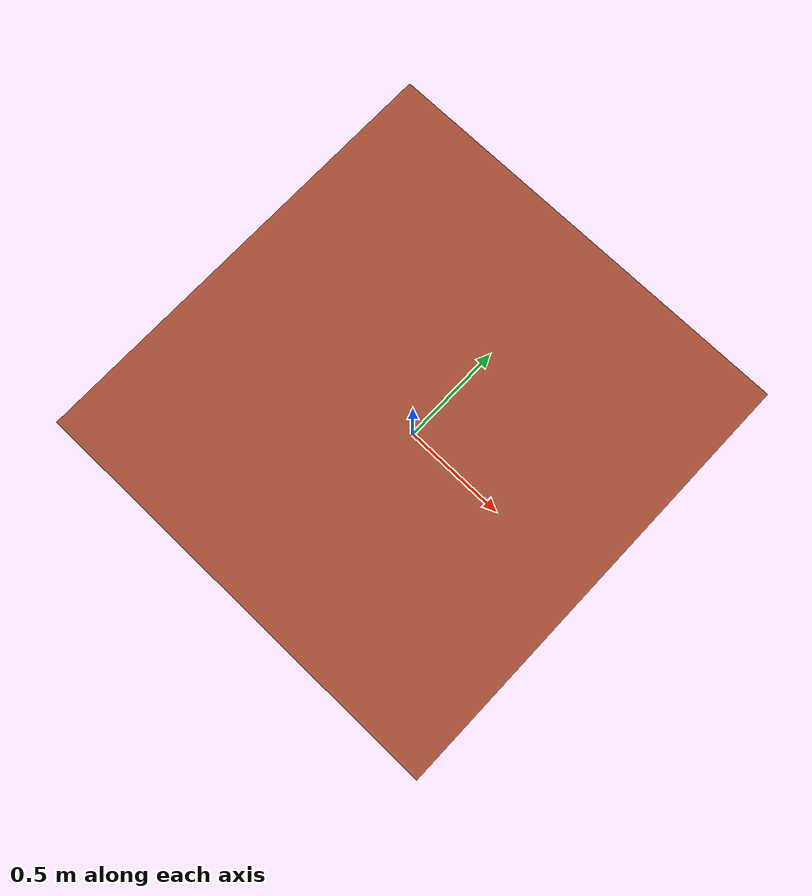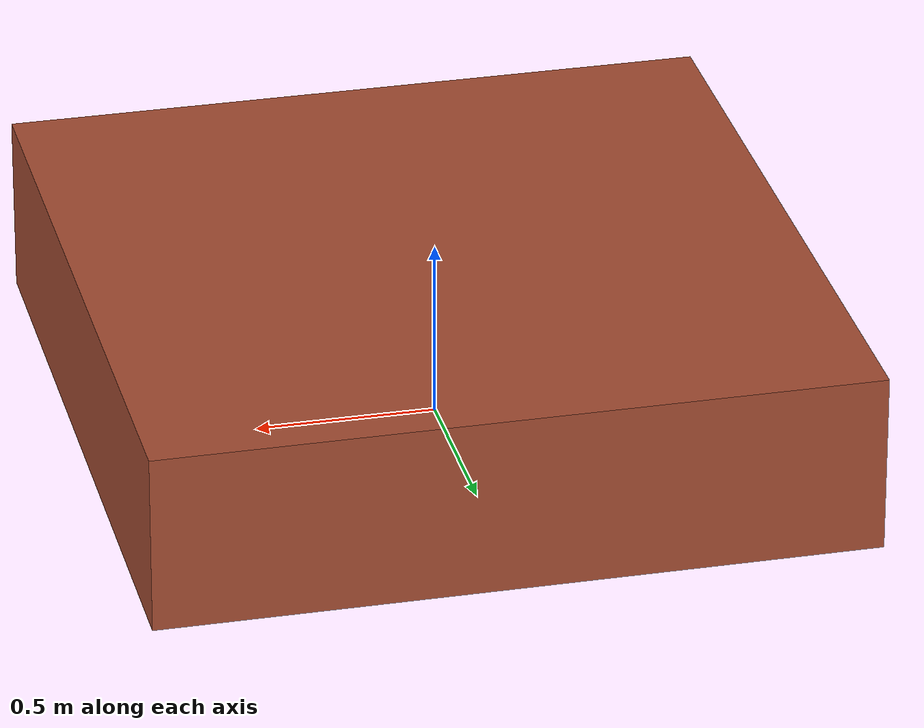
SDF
<?xml version="1.0" ?>
<sdf version="1.5">
  <model name="bed">
    <link name="brick_box">
      <inertial>
        <pose>0 0 -1 0 0 0</pose>
        <inertia>
          <ixx>2.050000</ixx>
          <ixy>0</ixy>
          <ixz>0</ixz>
          <iyy>2.050000</iyy>
          <iyz>0</iyz>
          <izz>2.050000</izz>
        </inertia>
        <mass>25.000000</mass>
      </inertial>
      <collision name="box">
        <pose>0 0 0.2500 0 0 0</pose>
        <geometry>
          <box>
            <size>1.9700 2.03000 0.50000</size>
          </box>
        </geometry>
      </collision>
      <visual name="box">
        <pose>0 0 0.25000 0 0 0</pose>
        <geometry>
          <box>
            <size>1.9700 2.03000 0.50000</size>
          </box>
        </geometry>
        <material>
          <script>
            <uri>file://media/materials/scripts/gazebo.material</uri>
            <name>Gazebo/Bricks</name>
          </script>
          <ambient>1 1 1 1</ambient>
        </material>
      </visual>
    </link>
    <static>1</static>
    <allow_auto_disable>1</allow_auto_disable>
  </model>
</sdf>
